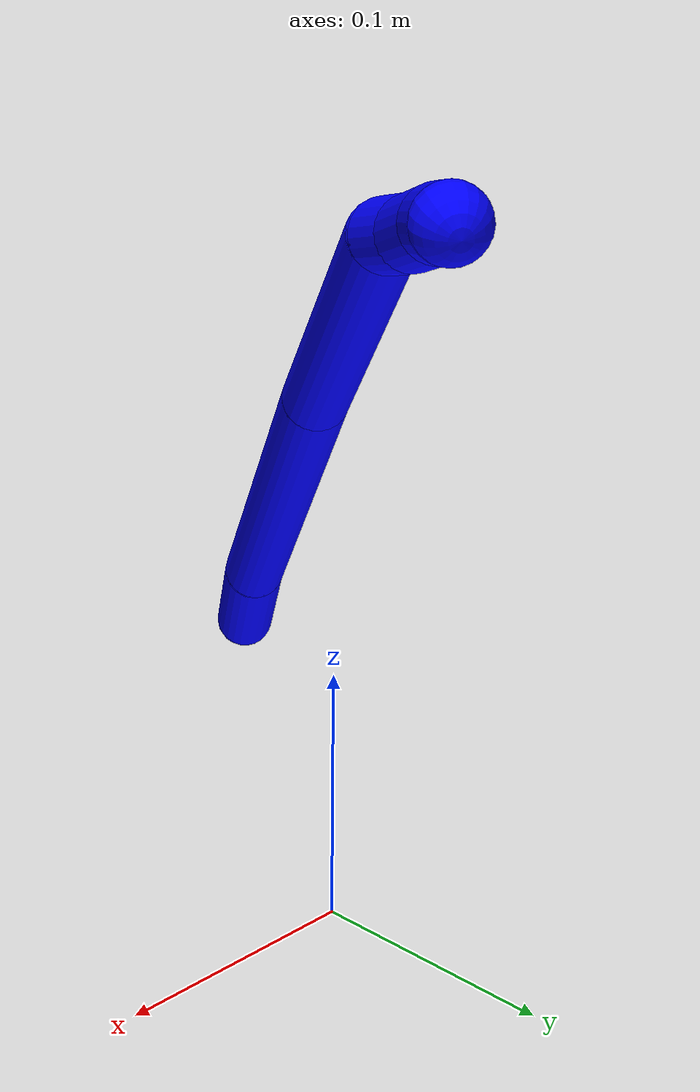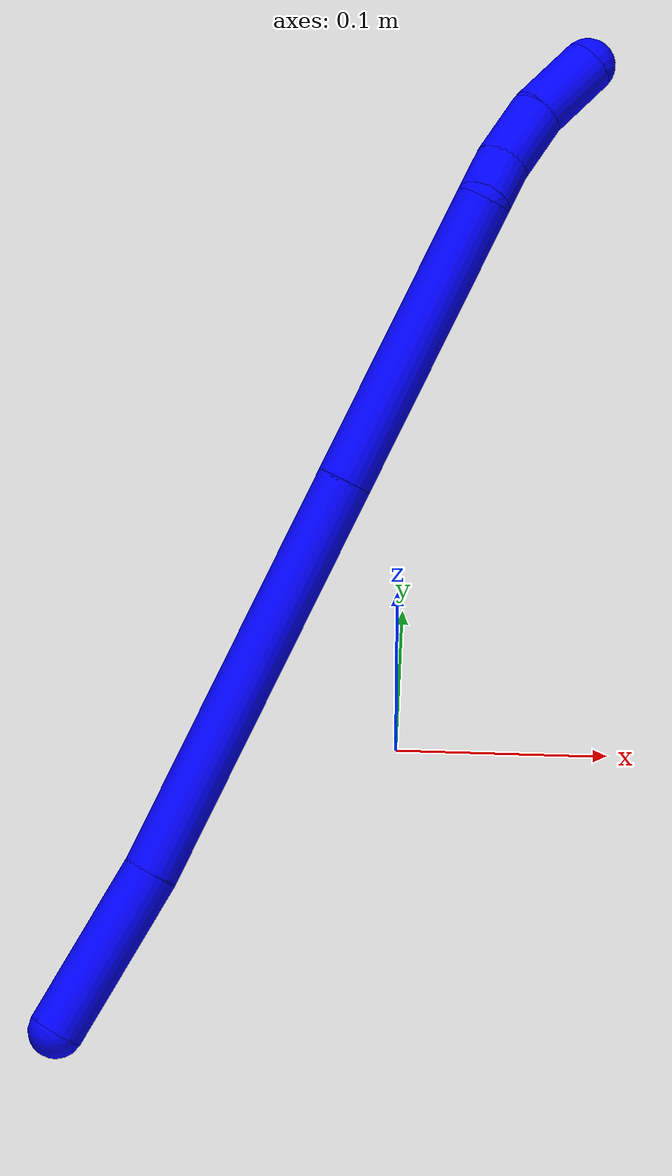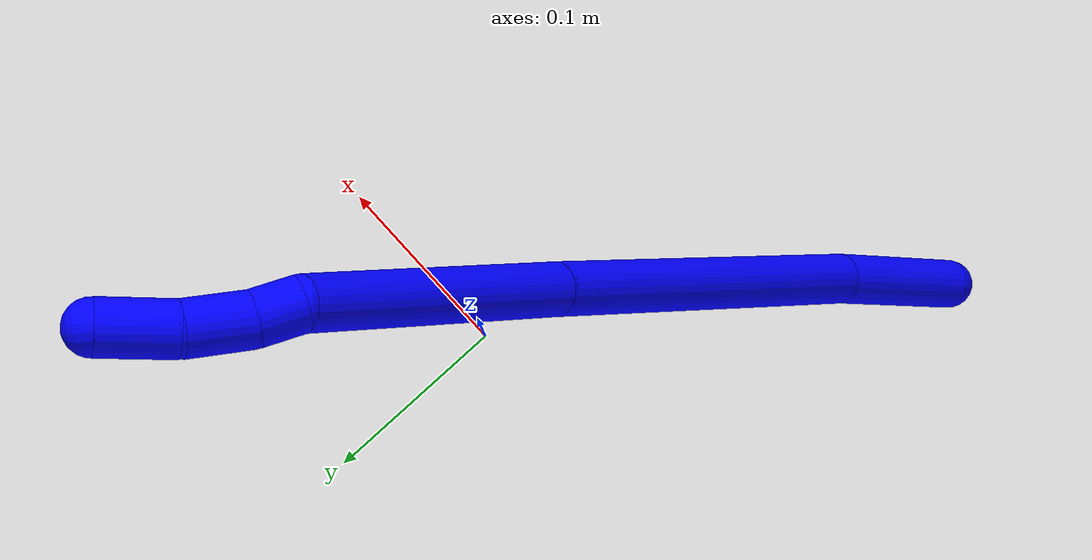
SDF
<sdf version="1.7">
 <world name="default">
  <plugin name="TubeGeneratorPlugin" filename="libtube_generator_plugin.so"/>
  <model name="photoneo_s_sensor">
   <static>1</static>
   <pose>0 0 2 1.57079 1.57079 3.14159</pose>
   <link name="link">
    <inertial><mass>0.1</mass></inertial>
    <sensor name="sensor" type="depth">
     <update_rate>30</update_rate>
     <camera>
      <horizontal_fov>1.22</horizontal_fov>
      <image><width>1920</width><height>1200</height><format>B8G8R8</format></image>
      <clip><near>0.1</near><far>4</far></clip>
      <depth_camera><output>points</output></depth_camera>
     </camera>
     <plugin name="camera_plugin" filename="libgazebo_ros_depth_camera.so">
      <baseline>0.2</baseline>
      <alwaysOn>1</alwaysOn>
      <updateRate>0.0</updateRate>
      <cameraName>camera_ir</cameraName>
      <imageTopicName>/camera/color/image_raw</imageTopicName>
      <cameraInfoTopicName>/camera/color/camera_info</cameraInfoTopicName>
      <depthImageTopicName>/camera/depth/image_raw</depthImageTopicName>
      <depthImageCameraInfoTopicName>/camera/depth/camera_info</depthImageCameraInfoTopicName>
      <pointCloudTopicName>/camera/depth/points</pointCloudTopicName>
      <frameName>fr_optical</frameName>
      <pointCloudCutoff>0.1</pointCloudCutoff>
      <pointCloudCutoffMax>2.0</pointCloudCutoffMax>
      <distortionK1>0</distortionK1>
      <distortionK2>0</distortionK2>
      <distortionK3>0</distortionK3>
      <distortionT1>0</distortionT1>
      <distortionT2>0</distortionT2>
      <CxPrime>0</CxPrime>
      <Cx>0</Cx>
      <Cy>0</Cy>
      <focalLength>0</focalLength>
      <hackBaseline>0</hackBaseline>
     </plugin>
    </sensor>
   </link>
  </model>
  <gravity>0 0 -9.8</gravity>
  <magnetic_field>6e-06 2.3e-05 -4.2e-05</magnetic_field>
  <atmosphere type="adiabatic"/>
  <physics name="default_physics" default="0" type="ode">
   <max_step_size>0.003</max_step_size>
   <real_time_factor>1</real_time_factor>
   <real_time_update_rate>1000</real_time_update_rate>
   <max_contacts>10000</max_contacts>
   <ode>
    <solver>
     <type>quick</type>
     <iters>100</iters>
     <sor>1.3</sor>
     <use_dynamic_moi_rescaling>0</use_dynamic_moi_rescaling>
    </solver>
    <constraints>
     <contact_max_correcting_vel>0</contact_max_correcting_vel>
     <contact_surface_layer>0.001</contact_surface_layer>
     <cfm>0</cfm>
     <erp>0.2</erp>
    </constraints>
   </ode>
  </physics>
  <scene><ambient>0.4 0.4 0.4 1</ambient><background>0.7 0.7 0.7 1</background><shadows>0</shadows></scene>
  <audio><device>default</device></audio>
  <spherical_coordinates>
   <surface_model>EARTH_WGS84</surface_model>
   <latitude_deg>0</latitude_deg>
   <longitude_deg>0</longitude_deg>
   <elevation>0</elevation>
   <heading_deg>0</heading_deg>
  </spherical_coordinates>
  <model name="bin">
   <static>1</static>
   <link name="bottom">
    <collision name="collision-bottom">
     <pose>0 0 -0.01 0 -0 0</pose>
     <geometry><box><size>0.8 0.6 0.02</size></box></geometry>
     <surface>
      <friction><ode><mu>100</mu><mu2>100</mu2></ode></friction>
      <contact><collide_bitmask>65535</collide_bitmask></contact>
     </surface>
    </collision>
   </link>
   <link name="west_wall">
    <collision name="collision-west_wall">
     <pose>-0.41 0 0.1 0 -0 0</pose>
     <geometry><box><size>0.02 0.6 0.2</size></box></geometry>
     <surface>
      <friction><ode><mu>100</mu><mu2>100</mu2></ode></friction>
      <contact><collide_bitmask>65535</collide_bitmask></contact>
     </surface>
    </collision>
   </link>
   <link name="east_wall">
    <collision name="collision-east_wall">
     <pose>0.41 0 0.1 0 -0 0</pose>
     <geometry><box><size>0.02 0.6 0.2</size></box></geometry>
     <surface>
      <friction><ode><mu>100</mu><mu2>100</mu2></ode></friction>
      <contact><collide_bitmask>65535</collide_bitmask></contact>
     </surface>
    </collision>
   </link>
   <link name="south_wall">
    <collision name="collision-south_wall">
     <pose>0 -0.31 0.1 0 -0 0</pose>
     <geometry><box><size>0.8 0.02 0.2</size></box></geometry>
     <surface>
      <friction><ode><mu>100</mu><mu2>100</mu2></ode></friction>
      <contact><collide_bitmask>65535</collide_bitmask></contact>
     </surface>
    </collision>
   </link>
   <link name="north_wall">
    <collision name="collision-north_wall">
     <pose>0 0.31 0.1 0 -0 0</pose>
     <geometry><box><size>0.8 0.02 0.2</size></box></geometry>
     <surface>
      <friction><ode><mu>100</mu><mu2>100</mu2></ode></friction>
      <contact><collide_bitmask>65535</collide_bitmask></contact>
     </surface>
    </collision>
   </link>
  </model>
  <model name="1">
   <static>0</static>
   <link name="1">
    <collision name="collision-cylinder-e_1_1_4">
     <pose>0.019103 0.02341 -0.027394 -2.43445 0.487456 -1.18579</pose>
     <geometry><cylinder><radius>0.0125</radius><length>0.081569</length></cylinder></geometry>
     <surface>
      <friction><ode><mu>1.16</mu><mu2>1.16</mu2><slip1>0</slip1><slip2>0</slip2></ode></friction>
      <contact><ode><kp>1e+06</kp><kd>1</kd><max_vel>0</max_vel><min_depth>0.001</min_depth></ode></contact>
     </surface>
    </collision>
    <visual name="visual-cylinder-e_1_1_4">
     <pose>0.019103 0.02341 -0.027394 -2.43445 0.487456 -1.18579</pose>
     <geometry><cylinder><radius>0.0125</radius><length>0.081569</length></cylinder></geometry>
     <material><ambient>0 0 1 1</ambient></material>
    </visual>
    <collision name="collision-cylinder-e_2_4_5">
     <pose>0.079379 0.107984 -0.116611 -2.36156 0.44218 -1.00072</pose>
     <geometry><cylinder><radius>0.0125</radius><length>0.192443</length></cylinder></geometry>
     <surface>
      <friction><ode><mu>1.16</mu><mu2>1.16</mu2><slip1>0</slip1><slip2>0</slip2></ode></friction>
      <contact><ode><kp>1e+06</kp><kd>1</kd><max_vel>0</max_vel><min_depth>0.001</min_depth></ode></contact>
     </surface>
    </collision>
    <visual name="visual-cylinder-e_2_4_5">
     <pose>0.079379 0.107984 -0.116611 -2.36156 0.44218 -1.00072</pose>
     <geometry><cylinder><radius>0.0125</radius><length>0.192443</length></cylinder></geometry>
     <material><ambient>0 0 1 1</ambient></material>
    </visual>
    <collision name="collision-cylinder-e_3_5_6">
     <pose>0.149111 0.21292 -0.224478 -2.38148 0.42246 -0.985264</pose>
     <geometry><cylinder><radius>0.0125</radius><length>0.139305</length></cylinder></geometry>
     <surface>
      <friction><ode><mu>1.16</mu><mu2>1.16</mu2><slip1>0</slip1><slip2>0</slip2></ode></friction>
      <contact><ode><kp>1e+06</kp><kd>1</kd><max_vel>0</max_vel><min_depth>0.001</min_depth></ode></contact>
     </surface>
    </collision>
    <visual name="visual-cylinder-e_3_5_6">
     <pose>0.149111 0.21292 -0.224478 -2.38148 0.42246 -0.985264</pose>
     <geometry><cylinder><radius>0.0125</radius><length>0.139305</length></cylinder></geometry>
     <material><ambient>0 0 1 1</ambient></material>
    </visual>
    <collision name="collision-cylinder-e_4_6_7">
     <pose>0.178392 0.261566 -0.280047 -2.66862 0.067437 -0.278126</pose>
     <geometry><cylinder><radius>0.0125</radius><length>0.02145</length></cylinder></geometry>
     <surface>
      <friction><ode><mu>1.16</mu><mu2>1.16</mu2><slip1>0</slip1><slip2>0</slip2></ode></friction>
      <contact><ode><kp>1e+06</kp><kd>1</kd><max_vel>0</max_vel><min_depth>0.001</min_depth></ode></contact>
     </surface>
    </collision>
    <visual name="visual-cylinder-e_4_6_7">
     <pose>0.178392 0.261566 -0.280047 -2.66862 0.067437 -0.278126</pose>
     <geometry><cylinder><radius>0.0125</radius><length>0.02145</length></cylinder></geometry>
     <material><ambient>0 0 1 1</ambient></material>
    </visual>
    <collision name="collision-cylinder-e_5_7_8">
     <pose>0.182769 0.272749 -0.302869 -2.69859 0.243389 -0.995026</pose>
     <geometry><cylinder><radius>0.0125</radius><length>0.030327</length></cylinder></geometry>
     <surface>
      <friction><ode><mu>1.16</mu><mu2>1.16</mu2><slip1>0</slip1><slip2>0</slip2></ode></friction>
      <contact><ode><kp>1e+06</kp><kd>1</kd><max_vel>0</max_vel><min_depth>0.001</min_depth></ode></contact>
     </surface>
    </collision>
    <visual name="visual-cylinder-e_5_7_8">
     <pose>0.182769 0.272749 -0.302869 -2.69859 0.243389 -0.995026</pose>
     <geometry><cylinder><radius>0.0125</radius><length>0.030327</length></cylinder></geometry>
     <material><ambient>0 0 1 1</ambient></material>
    </visual>
    <collision name="collision-cylinder-e_6_8_2">
     <pose>0.192294 0.283498 -0.33199 -2.868 0.343068 -1.7987</pose>
     <geometry><cylinder><radius>0.0125</radius><length>0.034907</length></cylinder></geometry>
     <surface>
      <friction><ode><mu>1.16</mu><mu2>1.16</mu2><slip1>0</slip1><slip2>0</slip2></ode></friction>
      <contact><ode><kp>1e+06</kp><kd>1</kd><max_vel>0</max_vel><min_depth>0.001</min_depth></ode></contact>
     </surface>
    </collision>
    <visual name="visual-cylinder-e_6_8_2">
     <pose>0.192294 0.283498 -0.33199 -2.868 0.343068 -1.7987</pose>
     <geometry><cylinder><radius>0.0125</radius><length>0.034907</length></cylinder></geometry>
     <material><ambient>0 0 1 1</ambient></material>
    </visual>
    <collision name="collision-sphere-2">
     <pose>0.198165 0.287939 -0.347815 0 -0 0</pose>
     <geometry><sphere><radius>0.0125</radius></sphere></geometry>
     <surface>
      <friction><ode><mu>1.16</mu><mu2>1.16</mu2><slip1>0</slip1><slip2>0</slip2></ode></friction>
      <contact><ode><kp>1e+06</kp><kd>1</kd><max_vel>0</max_vel><min_depth>0.001</min_depth></ode></contact>
     </surface>
    </collision>
    <visual name="visual-sphere-2">
     <pose>0.198165 0.287939 -0.347815 0 -0 0</pose>
     <geometry><sphere><radius>0.0125</radius></sphere></geometry>
     <material><ambient>0 0 1 1</ambient></material>
    </visual>
    <collision name="collision-sphere-4">
     <pose>0.038205 0.04682 -0.054788 0 -0 0</pose>
     <geometry><sphere><radius>0.0125</radius></sphere></geometry>
     <surface>
      <friction><ode><mu>1.16</mu><mu2>1.16</mu2><slip1>0</slip1><slip2>0</slip2></ode></friction>
      <contact><ode><kp>1e+06</kp><kd>1</kd><max_vel>0</max_vel><min_depth>0.001</min_depth></ode></contact>
     </surface>
    </collision>
    <visual name="visual-sphere-4">
     <pose>0.038205 0.04682 -0.054788 0 -0 0</pose>
     <geometry><sphere><radius>0.0125</radius></sphere></geometry>
     <material><ambient>0 0 1 1</ambient></material>
    </visual>
    <collision name="collision-sphere-1">
     <geometry><sphere><radius>0.0125</radius></sphere></geometry>
     <surface>
      <friction><ode><mu>1.16</mu><mu2>1.16</mu2><slip1>0</slip1><slip2>0</slip2></ode></friction>
      <contact><ode><kp>1e+06</kp><kd>1</kd><max_vel>0</max_vel><min_depth>0.001</min_depth></ode></contact>
     </surface>
    </collision>
    <visual name="visual-sphere-1">
     <geometry><sphere><radius>0.0125</radius></sphere></geometry>
     <material><ambient>0 0 1 1</ambient></material>
    </visual>
    <collision name="collision-sphere-8">
     <pose>0.186423 0.279057 -0.316164 0 -0 0</pose>
     <geometry><sphere><radius>0.0125</radius></sphere></geometry>
     <surface>
      <friction><ode><mu>1.16</mu><mu2>1.16</mu2><slip1>0</slip1><slip2>0</slip2></ode></friction>
      <contact><ode><kp>1e+06</kp><kd>1</kd><max_vel>0</max_vel><min_depth>0.001</min_depth></ode></contact>
     </surface>
    </collision>
    <visual name="visual-sphere-8">
     <pose>0.186423 0.279057 -0.316164 0 -0 0</pose>
     <geometry><sphere><radius>0.0125</radius></sphere></geometry>
     <material><ambient>0 0 1 1</ambient></material>
    </visual>
    <collision name="collision-sphere-5">
     <pose>0.120553 0.169149 -0.178435 0 -0 0</pose>
     <geometry><sphere><radius>0.0125</radius></sphere></geometry>
     <surface>
      <friction><ode><mu>1.16</mu><mu2>1.16</mu2><slip1>0</slip1><slip2>0</slip2></ode></friction>
      <contact><ode><kp>1e+06</kp><kd>1</kd><max_vel>0</max_vel><min_depth>0.001</min_depth></ode></contact>
     </surface>
    </collision>
    <visual name="visual-sphere-5">
     <pose>0.120553 0.169149 -0.178435 0 -0 0</pose>
     <geometry><sphere><radius>0.0125</radius></sphere></geometry>
     <material><ambient>0 0 1 1</ambient></material>
    </visual>
    <collision name="collision-sphere-6">
     <pose>0.177669 0.256692 -0.270521 0 -0 0</pose>
     <geometry><sphere><radius>0.0125</radius></sphere></geometry>
     <surface>
      <friction><ode><mu>1.16</mu><mu2>1.16</mu2><slip1>0</slip1><slip2>0</slip2></ode></friction>
      <contact><ode><kp>1e+06</kp><kd>1</kd><max_vel>0</max_vel><min_depth>0.001</min_depth></ode></contact>
     </surface>
    </collision>
    <visual name="visual-sphere-6">
     <pose>0.177669 0.256692 -0.270521 0 -0 0</pose>
     <geometry><sphere><radius>0.0125</radius></sphere></geometry>
     <material><ambient>0 0 1 1</ambient></material>
    </visual>
    <collision name="collision-sphere-7">
     <pose>0.179115 0.26644 -0.289573 0 -0 0</pose>
     <geometry><sphere><radius>0.0125</radius></sphere></geometry>
     <surface>
      <friction><ode><mu>1.16</mu><mu2>1.16</mu2><slip1>0</slip1><slip2>0</slip2></ode></friction>
      <contact><ode><kp>1e+06</kp><kd>1</kd><max_vel>0</max_vel><min_depth>0.001</min_depth></ode></contact>
     </surface>
    </collision>
    <visual name="visual-sphere-7">
     <pose>0.179115 0.26644 -0.289573 0 -0 0</pose>
     <geometry><sphere><radius>0.0125</radius></sphere></geometry>
     <material><ambient>0 0 1 1</ambient></material>
    </visual>
    <inertial>
     <pose>0.107376 0.152259 -0.165454 0 -0 0</pose>
     <mass>0.5</mass>
     <inertia>
      <ixx>-0.000237</ixx>
      <ixy>0</ixy>
      <ixz>0</ixz>
      <iyy>-0.000776</iyy>
      <iyz>0</iyz>
      <izz>-0.000963</izz>
     </inertia>
    </inertial>
   </link>
   <pose>-0.143914 -0.198289 0.011495 1.40858 -0.570706 -0.497875</pose>
  </model>
 </world>
</sdf>
